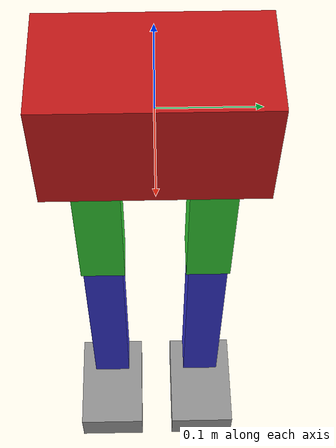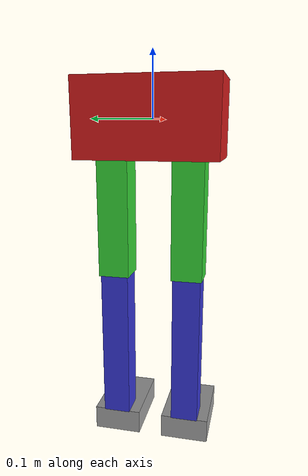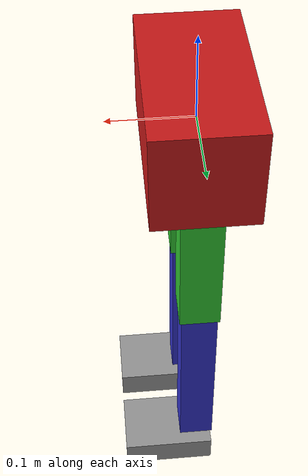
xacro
<?xml version="1.0"?>
<robot name="my_biped" xmlns:xacro="http://www.ros.org/wiki/xacro">

  <!-- Path to controllers yaml -->
  <xacro:arg name="controllers_yaml"
             default="$(find my_robot_description)/config/controllers.yaml"/>

  <!-- Materials -->
  <material name="red"><color rgba="0.8 0.1 0.1 1"/></material>
  <material name="green"><color rgba="0.2 0.8 0.2 1"/></material>
  <material name="blue"><color rgba="0.2 0.2 0.8 1"/></material>
  <material name="gray"><color rgba="0.6 0.6 0.6 1"/></material>

  <!-- Inertia macro -->
  <xacro:macro name="box_inertia" params="m x y z">
    <inertial>
      <mass value="${m}"/>
      <inertia
        ixx="${m*(y*y+z*z)/12}"
        iyy="${m*(x*x+z*z)/12}"
        izz="${m*(x*x+y*y)/12}"
        ixy="0" ixz="0" iyz="0"/>
    </inertial>
  </xacro:macro>

  <!-- BASE (ROOT) -->
  <link name="base_link">
    <xacro:box_inertia m="6.0" x="0.12" y="0.22" z="0.12"/>

    <visual>
      <geometry><box size="0.12 0.22 0.12"/></geometry>
      <material name="red"/>
    </visual>

    <collision>
      <geometry><box size="0.12 0.22 0.12"/></geometry>
    </collision>
  </link>

  <gazebo reference="base_link"><material>Gazebo/Red</material></gazebo>

  <!-- LEG MACRO -->
  <xacro:macro name="leg" params="side y">

    <!-- THIGH -->
    <link name="${side}_thigh">
      <xacro:box_inertia m="1.5" x="0.05" y="0.05" z="0.25"/>

      <visual>
        <origin xyz="0 0 -0.125"/>
        <geometry><box size="0.05 0.05 0.25"/></geometry>
        <material name="green"/>
      </visual>

      <collision>
        <origin xyz="0 0 -0.125"/>
        <geometry><box size="0.05 0.05 0.25"/></geometry>
      </collision>
    </link>

    <joint name="${side}_hip" type="revolute">
      <parent link="base_link"/>
      <child link="${side}_thigh"/>
      <origin xyz="0 ${y} 0"/>
      <axis xyz="0 1 0"/>
      <limit lower="-1.0" upper="1.0" effort="40" velocity="3"/>
      <dynamics damping="2.0" friction="0.5"/>
    </joint>

    <!-- SHIN -->
    <link name="${side}_shin">
      <xacro:box_inertia m="1.0" x="0.045" y="0.045" z="0.25"/>

      <visual>
        <origin xyz="0 0 -0.125"/>
        <geometry><box size="0.045 0.045 0.25"/></geometry>
        <material name="blue"/>
      </visual>

      <collision>
        <origin xyz="0 0 -0.125"/>
        <geometry><box size="0.045 0.045 0.25"/></geometry>
      </collision>
    </link>

    <joint name="${side}_knee" type="revolute">
      <parent link="${side}_thigh"/>
      <child link="${side}_shin"/>
      <origin xyz="0 0 -0.25"/>
      <axis xyz="0 1 0"/>
      <limit lower="0.0" upper="2.2" effort="40" velocity="3"/>
      <dynamics damping="3.0" friction="0.8"/>
    </joint>

    <!-- FOOT -->
    <link name="${side}_foot">
      <xacro:box_inertia m="0.8" x="0.12" y="0.08" z="0.04"/>

      <visual>
        <origin xyz="0 0 -0.02"/>
        <geometry><box size="0.12 0.08 0.04"/></geometry>
        <material name="gray"/>
      </visual>

      <collision>
        <origin xyz="0 0 -0.02"/>
        <geometry><box size="0.12 0.08 0.04"/></geometry>
      </collision>
    </link>

    <joint name="${side}_ankle" type="revolute">
      <parent link="${side}_shin"/>
      <child link="${side}_foot"/>
      <origin xyz="0.04 0 -0.25"/>
      <axis xyz="0 1 0"/>
      <limit lower="-0.6" upper="0.6" effort="30" velocity="3"/>
      <dynamics damping="1.5" friction="0.4"/>
    </joint>

    <!-- Gazebo colors -->
    <gazebo reference="${side}_thigh"><material>Gazebo/Green</material></gazebo>
    <gazebo reference="${side}_shin"><material>Gazebo/Blue</material></gazebo>
    <gazebo reference="${side}_foot"><material>Gazebo/Grey</material></gazebo>

    <!-- FOOT CONTACT -->
    <gazebo reference="${side}_foot">
      <mu1>1.0</mu1>
      <mu2>1.0</mu2>
      <kp>80000</kp>
      <kd>150</kd>
    </gazebo>

  </xacro:macro>

  <!-- LEGS -->
  <xacro:leg side="left"  y="0.06"/>
  <xacro:leg side="right" y="-0.06"/>

  <!-- ROS 2 CONTROL SYSTEM -->
  <ros2_control name="my_biped" type="system">
    <hardware>
      <plugin>gazebo_ros2_control/GazeboSystem</plugin>
    </hardware>

    <joint name="left_hip">
      <command_interface name="position"/>
      <state_interface name="position"/>
      <state_interface name="velocity"/>
    </joint>
    <joint name="left_knee">
      <command_interface name="position"/>
      <state_interface name="position"/>
      <state_interface name="velocity"/>
    </joint>
    <joint name="left_ankle">
      <command_interface name="position"/>
      <state_interface name="position"/>
      <state_interface name="velocity"/>
    </joint>

    <joint name="right_hip">
      <command_interface name="position"/>
      <state_interface name="position"/>
      <state_interface name="velocity"/>
    </joint>
    <joint name="right_knee">
      <command_interface name="position"/>
      <state_interface name="position"/>
      <state_interface name="velocity"/>
    </joint>
    <joint name="right_ankle">
      <command_interface name="position"/>
      <state_interface name="position"/>
      <state_interface name="velocity"/>
    </joint>
  </ros2_control>

  <!-- Gazebo Classic ros2_control -->
  <gazebo>
  <plugin name="gazebo_ros2_control" filename="libgazebo_ros2_control.so">
    <parameters>$(find my_robot_description)/config/controllers.yaml</parameters>
  </plugin>
</gazebo>

</robot>
